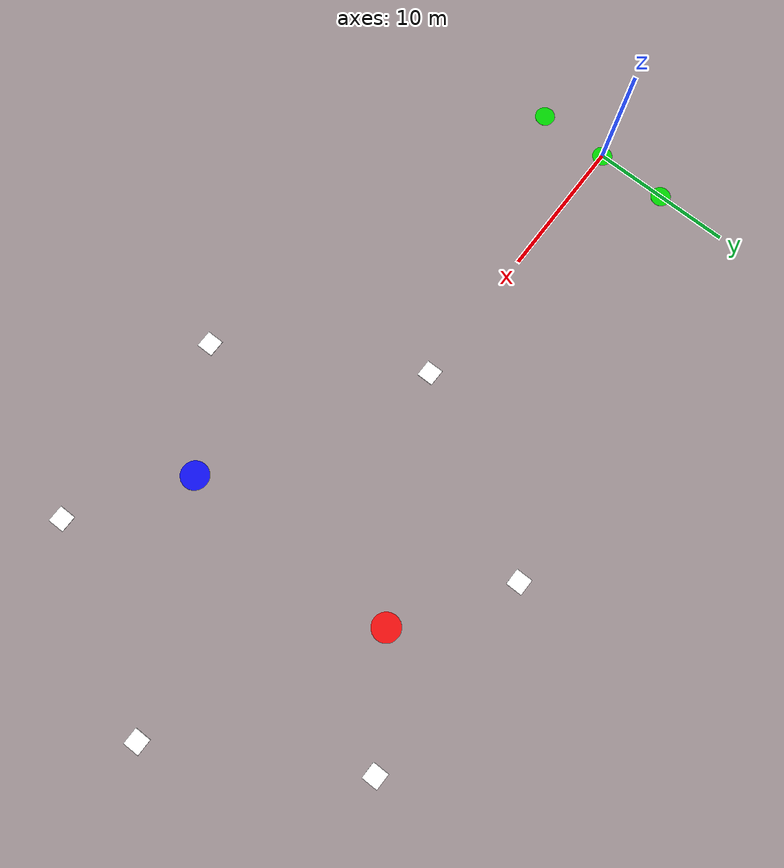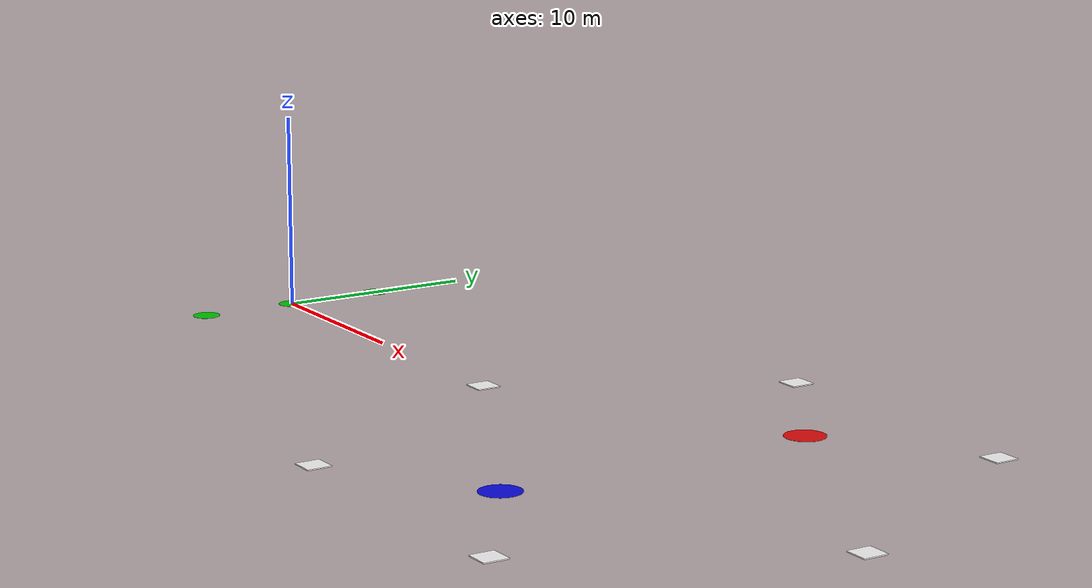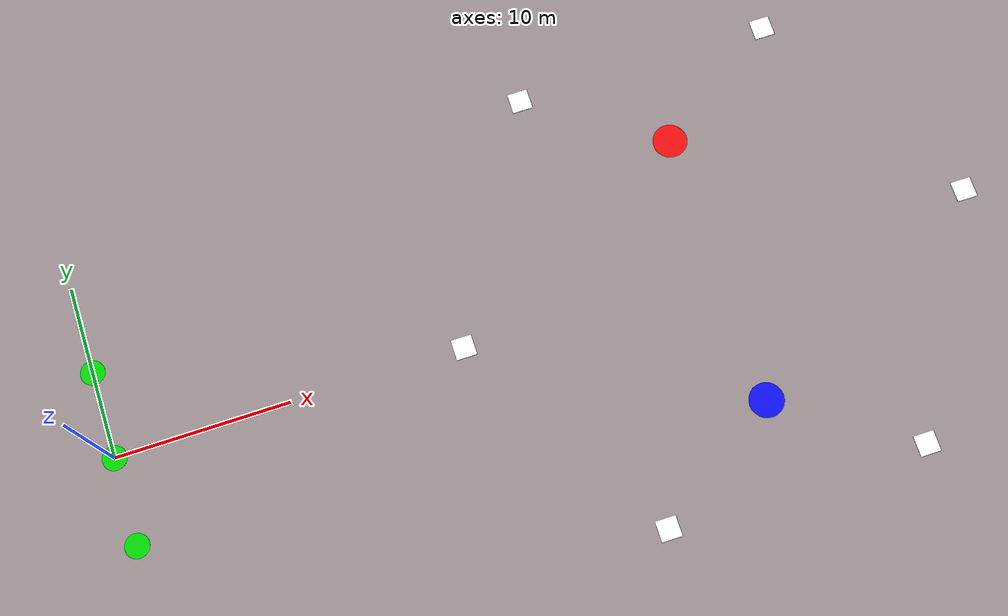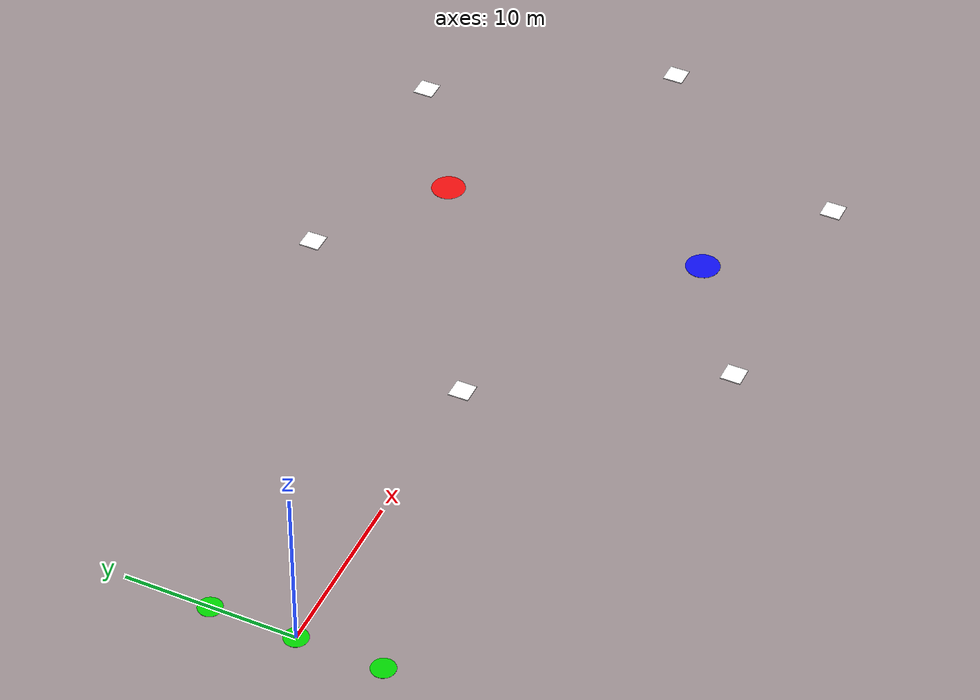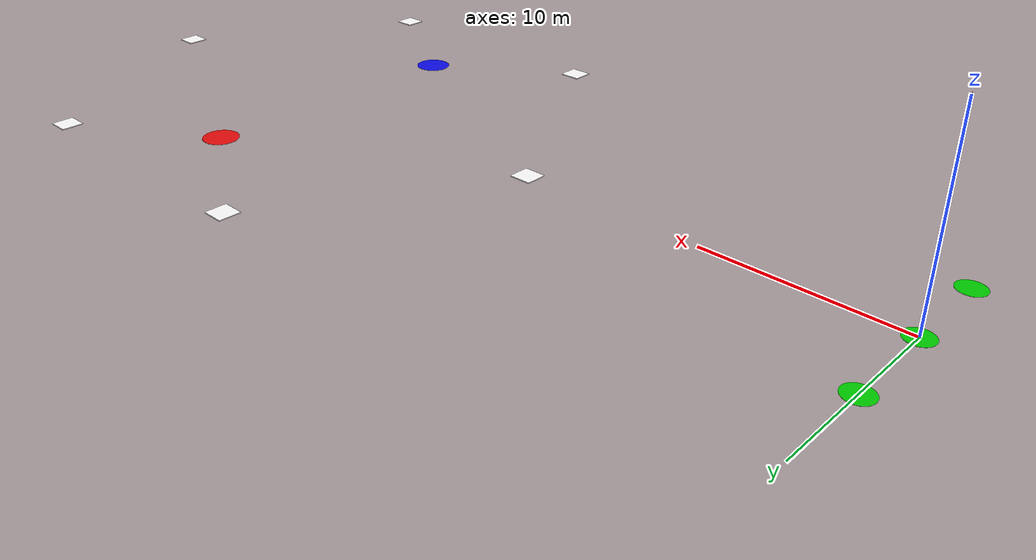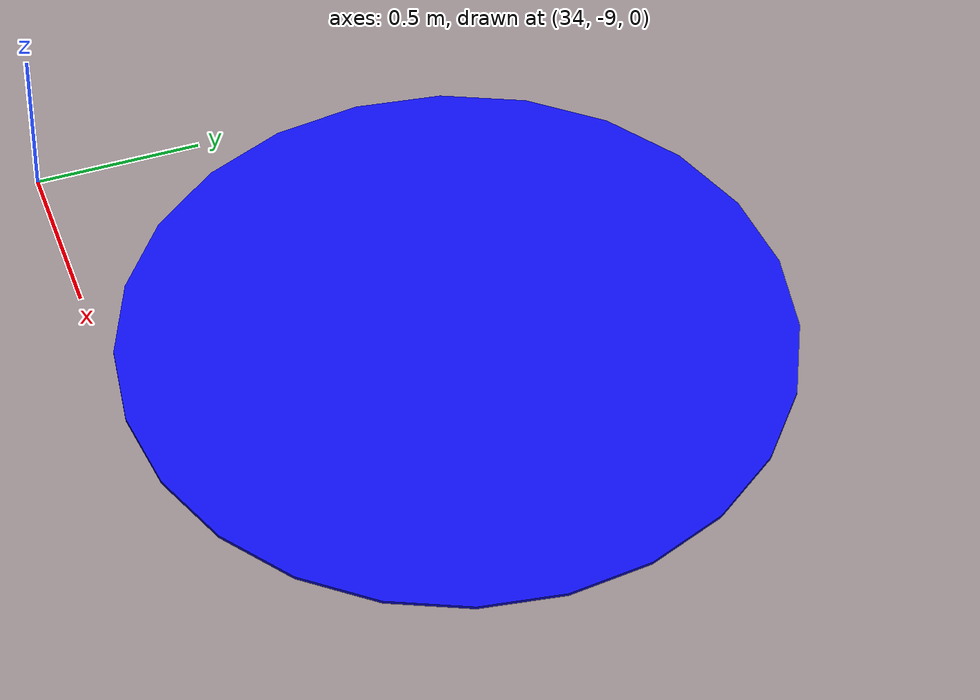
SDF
<sdf version="1.9">
 <world name="iris_runway">
  <physics name="1ms" type="ignore">
   <max_step_size>0.001</max_step_size>
   <real_time_factor>1.0</real_time_factor>
  </physics>
  <plugin filename="gz-sim-physics-system" name="gz::sim::systems::Physics"/>
  <plugin filename="gz-sim-sensors-system" name="gz::sim::systems::Sensors">
   <render_engine>ogre2</render_engine>
  </plugin>
  <plugin filename="gz-sim-user-commands-system" name="gz::sim::systems::UserCommands"/>
  <plugin filename="gz-sim-scene-broadcaster-system" name="gz::sim::systems::SceneBroadcaster"/>
  <plugin filename="gz-sim-imu-system" name="gz::sim::systems::Imu"/>
  <plugin filename="gz-sim-navsat-system" name="gz::sim::systems::NavSat"/>
  <scene><ambient>1.0 1.0 1.0</ambient><background>0.8 0.8 0.8</background></scene>
  <spherical_coordinates>
   <latitude_deg>-35.363262</latitude_deg>
   <longitude_deg>149.165237</longitude_deg>
   <elevation>584</elevation>
   <heading_deg>0</heading_deg>
   <surface_model>EARTH_WGS84</surface_model>
  </spherical_coordinates>
  <light type="directional" name="sun">
   <pose>0 0 10 0 0 0</pose>
   <diffuse>0.8 0.8 0.8 1</diffuse>
   <specular>0.8 0.8 0.8 1</specular>
   <attenuation>
    <range>1000</range>
    <constant>0.9</constant>
    <linear>0.01</linear>
    <quadratic>0.001</quadratic>
   </attenuation>
   <direction>-0.5 0.1 -0.9</direction>
  </light>
  <model name="axes">
   <static>1</static>
   <link name="link">
    <visual name="r">
     <cast_shadows>0</cast_shadows>
     <pose>5 0 0.1 0 0 0</pose>
     <geometry><box><size>10 0.01 0.01</size></box></geometry>
     <material>
      <ambient>1 0 0 0.8</ambient>
      <diffuse>1 0 0 0.8</diffuse>
      <emissive>1 0 0 0.8</emissive>
      <specular>0.5 0.5 0.5 0.8</specular>
     </material>
    </visual>
    <visual name="g">
     <cast_shadows>0</cast_shadows>
     <pose>0 5 0.1 0 0 0</pose>
     <geometry><box><size>0.01 10 0.01</size></box></geometry>
     <material>
      <ambient>0 1 0 0.8</ambient>
      <diffuse>0 1 0 0.8</diffuse>
      <emissive>0 1 0 0.8</emissive>
      <specular>0.5 0.5 0.5 0.8</specular>
     </material>
    </visual>
    <visual name="b">
     <cast_shadows>0</cast_shadows>
     <pose>0 0 5.1 0 0 0</pose>
     <geometry><box><size>0.01 0.01 10</size></box></geometry>
     <material>
      <ambient>0 0 1 0.8</ambient>
      <diffuse>0 0 1 0.8</diffuse>
      <emissive>0 0 1 0.8</emissive>
      <specular>0.5 0.5 0.5 0.8</specular>
     </material>
    </visual>
    <sensor name="navsat_sensor" type="navsat"><always_on>1</always_on><update_rate>1</update_rate></sensor>
   </link>
  </model>
  <include><name>qr_marker_1</name><uri>model://qr_marker_1</uri><pose>50.0 0.0 0 0 0 0</pose></include>
  <include><name>qr_marker_2</name><uri>model://qr_marker_2</uri><pose>42.5 13.0 0 0 0 0</pose></include>
  <include><name>qr_marker_3</name><uri>model://qr_marker_3</uri><pose>27.5 13.0 0 0 0 0</pose></include>
  <include><name>qr_marker_4</name><uri>model://qr_marker_4</uri><pose>20.0 0.0 0 0 0 0</pose></include>
  <include><name>qr_marker_5</name><uri>model://qr_marker_5</uri><pose>27.5 -13.0 0 0 0 0</pose></include>
  <include><name>qr_marker_6</name><uri>model://qr_marker_6</uri><pose>42.5 -13.0 0 0 0 0</pose></include>
  <model name="home_drone1">
   <static>true</static>
   <link name="link">
    <visual name="disc">
     <pose>0 0 0.005 0 0 0</pose>
     <geometry><cylinder><radius>0.7</radius><length>0.01</length></cylinder></geometry>
     <material><ambient>0 0.8 0 1</ambient><diffuse>0 0.8 0 1</diffuse></material>
    </visual>
   </link>
  </model>
  <model name="home_drone2">
   <static>true</static>
   <pose>0 -5 0 0 0 0</pose>
   <link name="link">
    <visual name="disc">
     <pose>0 0 0.005 0 0 0</pose>
     <geometry><cylinder><radius>0.7</radius><length>0.01</length></cylinder></geometry>
     <material><ambient>0 0.8 0 1</ambient><diffuse>0 0.8 0 1</diffuse></material>
    </visual>
   </link>
  </model>
  <model name="home_drone3">
   <static>true</static>
   <pose>0 5 0 0 0 0</pose>
   <link name="link">
    <visual name="disc">
     <pose>0 0 0.005 0 0 0</pose>
     <geometry><cylinder><radius>0.7</radius><length>0.01</length></cylinder></geometry>
     <material><ambient>0 0.8 0 1</ambient><diffuse>0 0.8 0 1</diffuse></material>
    </visual>
   </link>
  </model>
  <include><name>color_zone_red</name><uri>model://color_zone_red</uri><pose>35.0 8.0 0 0 0 0</pose></include>
  <include>
   <name>color_zone_blue</name>
   <uri>model://color_zone_blue</uri>
   <pose>35.0 -8.0 0 0 0 0</pose>
  </include>
 </world>
</sdf>

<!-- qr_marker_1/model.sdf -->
<sdf version="1.9">
  <model name="qr_marker_1">
    <static>true</static>
    <link name="link">
      <pose>0 0 0.06 0 0 0</pose>
      <collision name="collision">
        <geometry>
          <box><size>1.2 1.2 0.05</size></box>
        </geometry>
      </collision>
      <visual name="visual">
        <geometry>
          <box><size>1.2 1.2 0.05</size></box>
        </geometry>
        <material>
          <ambient>1 1 1 1</ambient>
          <diffuse>1 1 1 1</diffuse>
          <specular>0 0 0 1</specular>
          <emissive>0 0 0 0</emissive>
          <pbr>
            <metal>
              <albedo_map>model://qr_marker_1/materials/textures/qr_marker_1.png</albedo_map>
              <roughness>1.0</roughness>
              <metalness>0.0</metalness>
            </metal>
          </pbr>
        </material>
      </visual>
    </link>
  </model>
</sdf>

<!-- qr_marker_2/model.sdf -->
<sdf version="1.9">
  <model name="qr_marker_2">
    <static>true</static>
    <link name="link">
      <pose>0 0 0.06 0 0 0</pose>
      <collision name="collision">
        <geometry>
          <box><size>1.2 1.2 0.05</size></box>
        </geometry>
      </collision>
      <visual name="visual">
        <geometry>
          <box><size>1.2 1.2 0.05</size></box>
        </geometry>
        <material>
          <ambient>1 1 1 1</ambient>
          <diffuse>1 1 1 1</diffuse>
          <specular>0 0 0 1</specular>
          <emissive>0 0 0 0</emissive>
          <pbr>
            <metal>
              <albedo_map>model://qr_marker_2/materials/textures/qr_marker_2.png</albedo_map>
              <roughness>1.0</roughness>
              <metalness>0.0</metalness>
            </metal>
          </pbr>
        </material>
      </visual>
    </link>
  </model>
</sdf>

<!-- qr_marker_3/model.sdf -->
<sdf version="1.9">
  <model name="qr_marker_3">
    <static>true</static>
    <link name="link">
      <pose>0 0 0.06 0 0 0</pose>
      <collision name="collision">
        <geometry>
          <box><size>1.2 1.2 0.05</size></box>
        </geometry>
      </collision>
      <visual name="visual">
        <geometry>
          <box><size>1.2 1.2 0.05</size></box>
        </geometry>
        <material>
          <ambient>1 1 1 1</ambient>
          <diffuse>1 1 1 1</diffuse>
          <specular>0 0 0 1</specular>
          <emissive>0 0 0 0</emissive>
          <pbr>
            <metal>
              <albedo_map>model://qr_marker_3/materials/textures/qr_marker_3.png</albedo_map>
              <roughness>1.0</roughness>
              <metalness>0.0</metalness>
            </metal>
          </pbr>
        </material>
      </visual>
    </link>
  </model>
</sdf>

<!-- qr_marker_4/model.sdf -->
<sdf version="1.9">
  <model name="qr_marker_4">
    <static>true</static>
    <link name="link">
      <pose>0 0 0.06 0 0 0</pose>
      <collision name="collision">
        <geometry>
          <box><size>1.2 1.2 0.05</size></box>
        </geometry>
      </collision>
      <visual name="visual">
        <geometry>
          <box><size>1.2 1.2 0.05</size></box>
        </geometry>
        <material>
          <ambient>1 1 1 1</ambient>
          <diffuse>1 1 1 1</diffuse>
          <specular>0 0 0 1</specular>
          <emissive>0 0 0 0</emissive>
          <pbr>
            <metal>
              <albedo_map>model://qr_marker_4/materials/textures/qr_marker_4.png</albedo_map>
              <roughness>1.0</roughness>
              <metalness>0.0</metalness>
            </metal>
          </pbr>
        </material>
      </visual>
    </link>
  </model>
</sdf>

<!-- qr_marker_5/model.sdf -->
<sdf version="1.9">
  <model name="qr_marker_5">
    <static>true</static>
    <link name="link">
      <pose>0 0 0.06 0 0 0</pose>
      <collision name="collision">
        <geometry>
          <box><size>1.2 1.2 0.05</size></box>
        </geometry>
      </collision>
      <visual name="visual">
        <geometry>
          <box><size>1.2 1.2 0.05</size></box>
        </geometry>
        <material>
          <ambient>1 1 1 1</ambient>
          <diffuse>1 1 1 1</diffuse>
          <specular>0 0 0 1</specular>
          <emissive>0 0 0 0</emissive>
          <pbr>
            <metal>
              <albedo_map>model://qr_marker_5/materials/textures/qr_marker_5.png</albedo_map>
              <roughness>1.0</roughness>
              <metalness>0.0</metalness>
            </metal>
          </pbr>
        </material>
      </visual>
    </link>
  </model>
</sdf>

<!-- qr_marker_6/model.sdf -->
<sdf version="1.9">
  <model name="qr_marker_6">
    <static>true</static>
    <link name="link">
      <pose>0 0 0.06 0 0 0</pose>
      <collision name="collision">
        <geometry>
          <box><size>1.2 1.2 0.05</size></box>
        </geometry>
      </collision>
      <visual name="visual">
        <geometry>
          <box><size>1.2 1.2 0.05</size></box>
        </geometry>
        <material>
          <ambient>1 1 1 1</ambient>
          <diffuse>1 1 1 1</diffuse>
          <specular>0 0 0 1</specular>
          <emissive>0 0 0 0</emissive>
          <pbr>
            <metal>
              <albedo_map>model://qr_marker_6/materials/textures/qr_marker_6.png</albedo_map>
              <roughness>1.0</roughness>
              <metalness>0.0</metalness>
            </metal>
          </pbr>
        </material>
      </visual>
    </link>
  </model>
</sdf>

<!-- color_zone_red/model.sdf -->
<sdf version="1.9">
  <model name="color_zone_red">
    <static>true</static>
    <link name="link">
      <pose>0 0 0.005 0 0 0</pose>
      <collision name="collision">
        <geometry>
          <cylinder><radius>1.0</radius><length>0.01</length></cylinder>
        </geometry>
      </collision>
      <visual name="visual">
        <geometry>
          <cylinder><radius>1.0</radius><length>0.01</length></cylinder>
        </geometry>
        <material>
          <ambient>0.9 0.05 0.05 1</ambient>
          <diffuse>0.9 0.05 0.05 1</diffuse>
          <specular>0.2 0.0 0.0 1</specular>
          <emissive>0.4 0.0 0.0 1</emissive>
        </material>
      </visual>
    </link>
  </model>
</sdf>

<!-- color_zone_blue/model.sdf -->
<sdf version="1.9">
  <model name="color_zone_blue">
    <static>true</static>
    <link name="link">
      <pose>0 0 0.005 0 0 0</pose>
      <collision name="collision">
        <geometry>
          <cylinder><radius>1.0</radius><length>0.01</length></cylinder>
        </geometry>
      </collision>
      <visual name="visual">
        <geometry>
          <cylinder><radius>1.0</radius><length>0.01</length></cylinder>
        </geometry>
        <material>
          <ambient>0.05 0.05 0.9 1</ambient>
          <diffuse>0.05 0.05 0.9 1</diffuse>
          <specular>0.0 0.0 0.2 1</specular>
          <emissive>0.0 0.0 0.4 1</emissive>
        </material>
      </visual>
    </link>
  </model>
</sdf>
